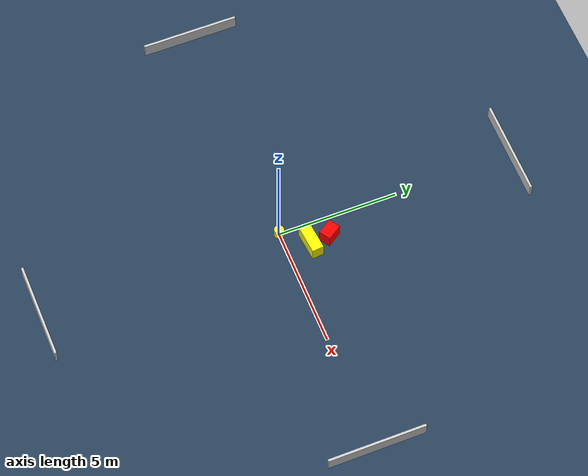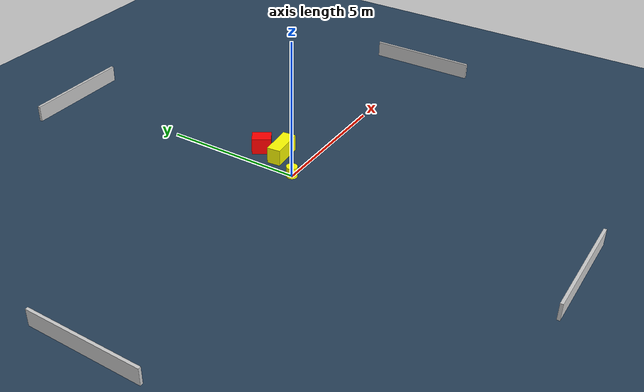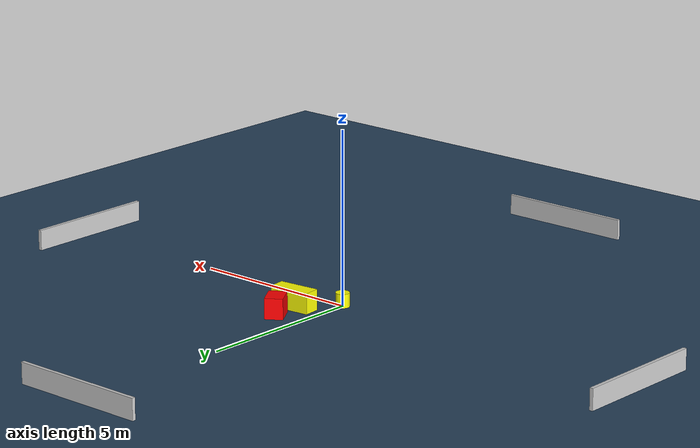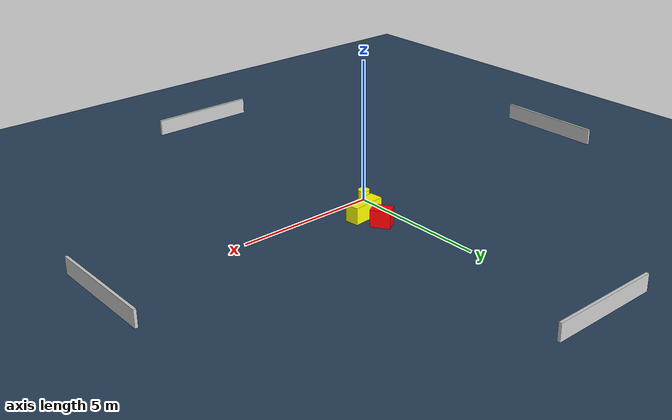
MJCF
<?xml version="1.0" ?>
<mujoco model="generated_environment">
  <option timestep="0.01" integrator="RK4" cone="elliptic"/>
  <default>
    <geom density="1"/>
  </default>
  <asset>
    <texture builtin="gradient" height="3072" name="skybox" rgb1="0.3 0.5 0.7" rgb2="0 0 0" type="skybox" width="512"/>
    <texture builtin="checker" height="300" name="groundplane" rgb1="0.2 0.3 0.4" rgb2="0.1 0.2 0.3" type="2d" width="300"/>
    <material name="groundplane" reflectance="0.2" texrepeat="5 5" texture="groundplane"/>
  </asset>
  <worldbody>
    <light dir="0 0 -1" directional="true" pos="0 0 1.5"/>
    <geom condim="3" friction="0.5 0.005 0.001" material="groundplane" name="floor" pos="0 0 0" size="0 0 0.05" type="plane"/>
    <body name="walls">
      <geom name="wall_1" condim="4" pos="-10.0 0.0 0.3" rgba="0.800000011920929 0.800000011920929 0.800000011920929 1.0" size="0.05 2.0 0.3" type="box"/>
      <geom name="wall_2" condim="4" pos="10.0 0.0 0.3" rgba="0.800000011920929 0.800000011920929 0.800000011920929 1.0" size="0.05 2.0 0.3" type="box"/>
      <geom name="wall_3" condim="4" pos="0.0 -10.0 0.3" rgba="0.800000011920929 0.800000011920929 0.800000011920929 1.0" size="2.0 0.05 0.3" type="box"/>
      <geom name="wall_4" condim="4" pos="0.0 10.0 0.3" rgba="0.800000011920929 0.800000011920929 0.800000011920929 1.0" size="2.0 0.05 0.3" type="box"/>
    </body>
    <body name="robot">
      <joint name="joint_x" type="slide" pos="0 0 0" axis="1 0 0"/>
      <joint name="joint_y" type="slide" pos="0 0 0" axis="0 1 0"/>
      <geom name="robot" type="cylinder" pos="0.0 0.0 0.2" size="0.2 0.2 0.0" mass="5.0" friction="1.0 0.005 0.0001" condim="4" rgba="1.0 1.0 0.0 1.0"/>
    </body>
    <body name="obstacle_1_movable">
      <geom name="obstacle_1_movable" condim="4" pos="0.8834347786986665 1.0063979315905345 0.3" euler="0 0 5.331874728409058" friction="0.0 0.005 0.001" rgba="1.0 1.0 0.0 1.0" size="0.6042559203320885 0.24317293628512604 0.3" type="box" mass="0.1"/>
      <joint type="free"/>
    </body>
    <body name="obstacle_2_static">
      <geom name="obstacle_2_static" condim="4" pos="0.8195905716384905 1.8136092424342194 0.3" euler="0 0 302.34793659361696" friction="0.0 0.005 0.001" rgba="1.0 0.0 0.0 1.0" size="0.34479461008729817 0.25700759946586316 0.3" type="box"/>
    </body>
  </worldbody>
  <actuator>
    <motor name="actuator_x" joint="joint_x" gear="1" ctrlrange="-1 1"/>
    <motor name="actuator_y" joint="joint_y" gear="1" ctrlrange="-1 1"/>
  </actuator>
</mujoco>
